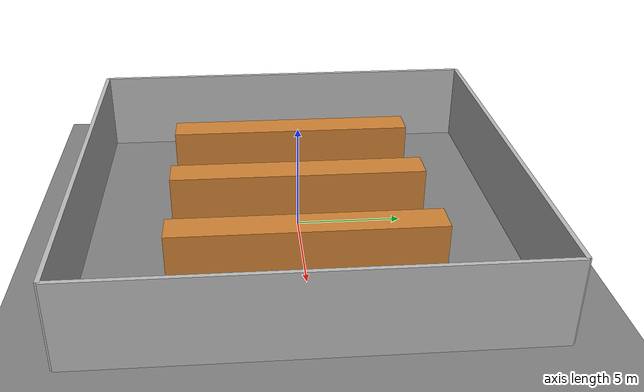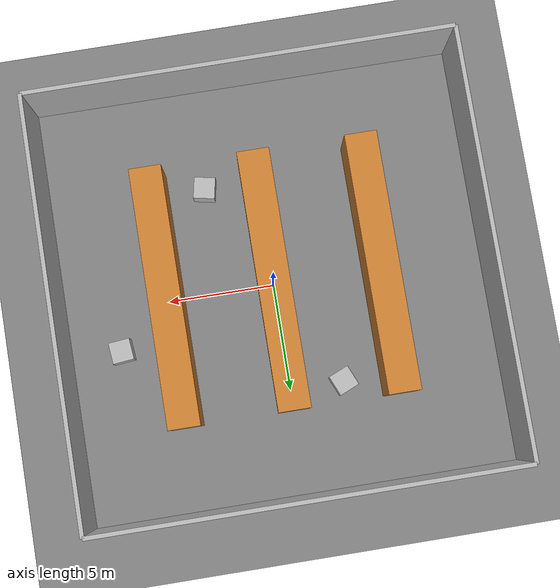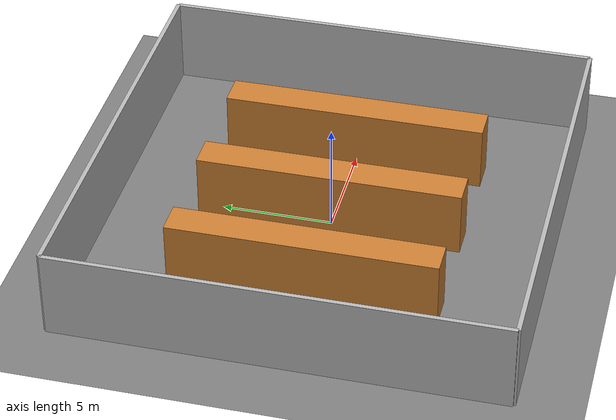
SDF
<?xml version="1.0"?>
<sdf version="1.10">
  <world name="world_2">
    <physics name="1ms" type="ignored">
      <max_step_size>0.001</max_step_size>
      <real_time_factor>1.0</real_time_factor>
    </physics>

    <plugin filename="gz-sim-physics-system" name="gz::sim::systems::Physics"/>
    <plugin filename="gz-sim-user-commands-system" name="gz::sim::systems::UserCommands"/>
    <plugin filename="gz-sim-scene-broadcaster-system" name="gz::sim::systems::SceneBroadcaster"/>
    <plugin filename="gz-sim-sensors-system" name="gz::sim::systems::Sensors">
      <render_engine>ogre2</render_engine>
    </plugin>

    <light type="directional" name="sun">
      <cast_shadows>true</cast_shadows>
      <pose>0 0 10 0 0 0</pose>
      <diffuse>0.95 0.95 0.95 1</diffuse>
      <specular>0.25 0.25 0.25 1</specular>
      <direction>-0.5 0.1 -0.9</direction>
    </light>

    <model name="ground_plane">
      <static>true</static>
      <link name="link">
        <collision name="collision">
          <geometry>
            <plane>
              <normal>0 0 1</normal>
              <size>100 100</size>
            </plane>
          </geometry>
        </collision>
        <visual name="visual">
          <geometry>
            <plane>
              <normal>0 0 1</normal>
              <size>100 100</size>
            </plane>
          </geometry>
          <material>
            <ambient>0.5 0.5 0.5 1</ambient>
            <diffuse>0.5 0.5 0.5 1</diffuse>
          </material>
        </visual>
      </link>
    </model>

    <!-- Warehouse Layout -->
    <!-- Large Outer Walls (20x20m) -->
    <model name="outer_n"><static>true</static><pose>0 10 2 0 0 0</pose><link name="link"><collision name="c"><geometry><box><size>20 0.2 4</size></box></geometry></collision><visual name="v"><geometry><box><size>20 0.2 4</size></box></geometry></visual></link></model>
    <model name="outer_s"><static>true</static><pose>0 -10 2 0 0 0</pose><link name="link"><collision name="c"><geometry><box><size>20 0.2 4</size></box></geometry></collision><visual name="v"><geometry><box><size>20 0.2 4</size></box></geometry></visual></link></model>
    <model name="outer_w"><static>true</static><pose>-10 0 2 0 0 0</pose><link name="link"><collision name="c"><geometry><box><size>0.2 20 4</size></box></geometry></collision><visual name="v"><geometry><box><size>0.2 20 4</size></box></geometry></visual></link></model>
    <model name="outer_e"><static>true</static><pose>10 0 2 0 0 0</pose><link name="link"><collision name="c"><geometry><box><size>0.2 20 4</size></box></geometry></collision><visual name="v"><geometry><box><size>0.2 20 4</size></box></geometry></visual></link></model>

    <!-- Warehouse Shelves (Aisles) -->
    <model name="shelf_1"><static>true</static><pose>-5 0 1.5 0 0 0</pose><link name="link"><collision name="c"><geometry><box><size>1.5 12 3</size></box></geometry></collision><visual name="v"><geometry><box><size>1.5 12 3</size></box></geometry><material><ambient>0.8 0.5 0.2 1</ambient><diffuse>0.8 0.5 0.2 1</diffuse></material></visual></link></model>
    <model name="shelf_2"><static>true</static><pose>0 0 1.5 0 0 0</pose><link name="link"><collision name="c"><geometry><box><size>1.5 12 3</size></box></geometry></collision><visual name="v"><geometry><box><size>1.5 12 3</size></box></geometry><material><ambient>0.8 0.5 0.2 1</ambient><diffuse>0.8 0.5 0.2 1</diffuse></material></visual></link></model>
    <model name="shelf_3"><static>true</static><pose>5 0 1.5 0 0 0</pose><link name="link"><collision name="c"><geometry><box><size>1.5 12 3</size></box></geometry></collision><visual name="v"><geometry><box><size>1.5 12 3</size></box></geometry><material><ambient>0.8 0.5 0.2 1</ambient><diffuse>0.8 0.5 0.2 1</diffuse></material></visual></link></model>

    <!-- Scattered Crates -->
    <model name="crate_1"><static>true</static><pose>-2.5 5 0.5 0 0 0.4</pose><link name="link"><collision name="c"><geometry><box><size>1 1 1</size></box></geometry></collision><visual name="v"><geometry><box><size>1 1 1</size></box></geometry></visual></link></model>
    <model name="crate_2"><static>true</static><pose>2.5 -5 0.5 0 0 -0.2</pose><link name="link"><collision name="c"><geometry><box><size>1 1 1</size></box></geometry></collision><visual name="v"><geometry><box><size>1 1 1</size></box></geometry></visual></link></model>
    <model name="crate_3"><static>true</static><pose>7.5 2 0.5 0 0 0.1</pose><link name="link"><collision name="c"><geometry><box><size>1 1 1</size></box></geometry></collision><visual name="v"><geometry><box><size>1 1 1</size></box></geometry></visual></link></model>

  </world>
</sdf>
